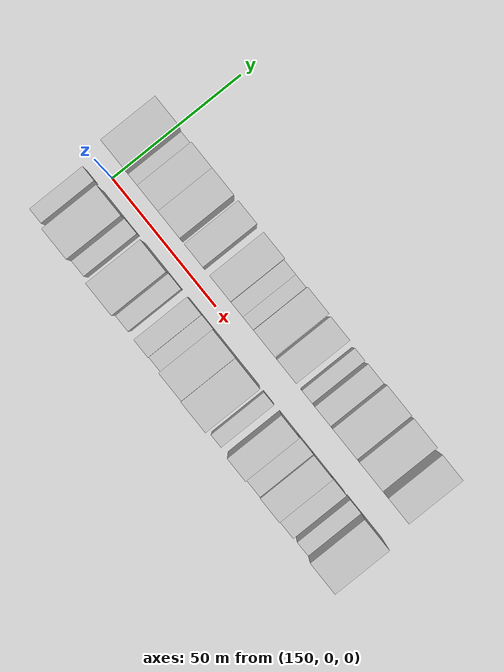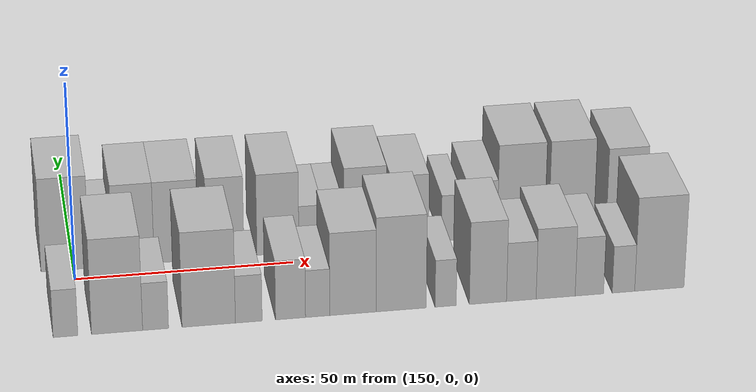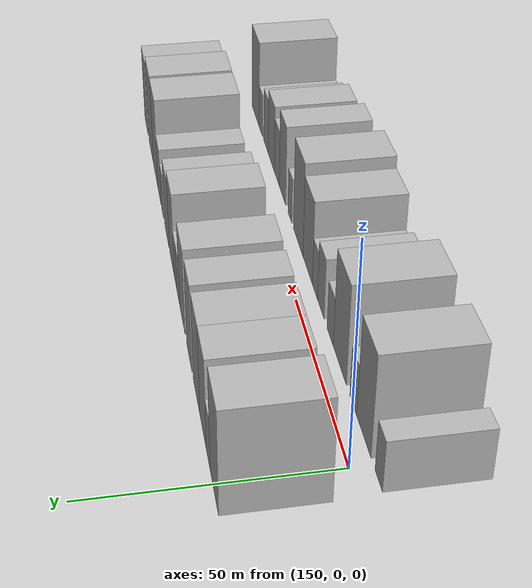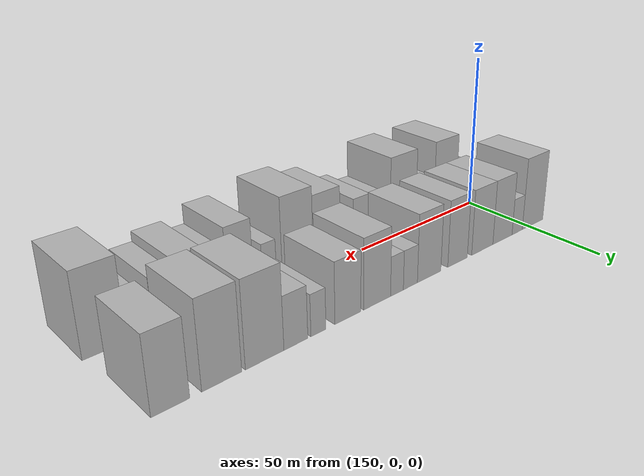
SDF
<sdf version="1.6">
 <world name="default">
  <model name="building_14">
   <static>1</static>
   <pose>148.1119 14.5000 0 0.000000 0.000000 1.570796</pose>
   <link name="link">
    <pose>0 0 12.00 0 0 0</pose>
    <collision name="collision"><geometry><box><size>20.0000 11.0243 24.0000</size></box></geometry></collision>
    <visual name="visual">
     <cast_shadows>0</cast_shadows>
     <geometry><box><size>20.0000 11.0243 24.0000</size></box></geometry>
     <material>
      <script>
       <uri>model://HANNAS_wall/materials/scripts</uri>
       <uri>model://HANNAS_wall/materials/textures</uri>
       <name>vrc/HANNAS_wall</name>
      </script>
     </material>
    </visual>
   </link>
  </model>
  <model name="building_15">
   <static>1</static>
   <pose>156.2772 14.5000 0 0.000000 0.000000 1.570796</pose>
   <link name="link">
    <pose>0 0 6.00 0 0 0</pose>
    <collision name="collision"><geometry><box><size>20.0000 5.3063 12.0000</size></box></geometry></collision>
    <visual name="visual">
     <cast_shadows>0</cast_shadows>
     <geometry><box><size>20.0000 5.3063 12.0000</size></box></geometry>
     <material>
      <script>
       <uri>model://HANNAS_wall/materials/scripts</uri>
       <uri>model://HANNAS_wall/materials/textures</uri>
       <name>vrc/HANNAS_wall</name>
      </script>
     </material>
    </visual>
   </link>
  </model>
  <model name="building_16">
   <static>1</static>
   <pose>163.7048 14.5000 0 0.000000 0.000000 1.570796</pose>
   <link name="link">
    <pose>0 0 10.50 0 0 0</pose>
    <collision name="collision"><geometry><box><size>20.0000 9.5489 21.0000</size></box></geometry></collision>
    <visual name="visual">
     <cast_shadows>0</cast_shadows>
     <geometry><box><size>20.0000 9.5489 21.0000</size></box></geometry>
     <material>
      <script>
       <uri>model://HANNAS_wall/materials/scripts</uri>
       <uri>model://HANNAS_wall/materials/textures</uri>
       <name>vrc/HANNAS_wall</name>
      </script>
     </material>
    </visual>
   </link>
  </model>
  <model name="building_17">
   <static>1</static>
   <pose>173.4987 14.5000 0 0.000000 0.000000 1.570796</pose>
   <link name="link">
    <pose>0 0 10.50 0 0 0</pose>
    <collision name="collision"><geometry><box><size>20.0000 10.0389 21.0000</size></box></geometry></collision>
    <visual name="visual">
     <cast_shadows>0</cast_shadows>
     <geometry><box><size>20.0000 10.0389 21.0000</size></box></geometry>
     <material>
      <script>
       <uri>model://HANNAS_wall/materials/scripts</uri>
       <uri>model://HANNAS_wall/materials/textures</uri>
       <name>vrc/HANNAS_wall</name>
      </script>
     </material>
    </visual>
   </link>
  </model>
  <model name="building_18">
   <static>1</static>
   <pose>184.8592 14.5000 0 0.000000 0.000000 1.570796</pose>
   <link name="link">
    <pose>0 0 10.50 0 0 0</pose>
    <collision name="collision"><geometry><box><size>20.0000 8.6819 21.0000</size></box></geometry></collision>
    <visual name="visual">
     <cast_shadows>0</cast_shadows>
     <geometry><box><size>20.0000 8.6819 21.0000</size></box></geometry>
     <material>
      <script>
       <uri>model://HANNAS_wall/materials/scripts</uri>
       <uri>model://HANNAS_wall/materials/textures</uri>
       <name>vrc/HANNAS_wall</name>
      </script>
     </material>
    </visual>
   </link>
  </model>
  <model name="building_19">
   <static>1</static>
   <pose>197.0673 14.5000 0 0.000000 0.000000 1.570796</pose>
   <link name="link">
    <pose>0 0 10.50 0 0 0</pose>
    <collision name="collision"><geometry><box><size>20.0000 9.7342 21.0000</size></box></geometry></collision>
    <visual name="visual">
     <cast_shadows>0</cast_shadows>
     <geometry><box><size>20.0000 9.7342 21.0000</size></box></geometry>
     <material>
      <script>
       <uri>model://HANNAS_wall/materials/scripts</uri>
       <uri>model://HANNAS_wall/materials/textures</uri>
       <name>vrc/HANNAS_wall</name>
      </script>
     </material>
    </visual>
   </link>
  </model>
  <model name="building_20">
   <static>1</static>
   <pose>204.7194 14.5000 0 0.000000 0.000000 1.570796</pose>
   <link name="link">
    <pose>0 0 6.00 0 0 0</pose>
    <collision name="collision"><geometry><box><size>20.0000 5.5701 12.0000</size></box></geometry></collision>
    <visual name="visual">
     <cast_shadows>0</cast_shadows>
     <geometry><box><size>20.0000 5.5701 12.0000</size></box></geometry>
     <material>
      <script>
       <uri>model://HANNAS_wall/materials/scripts</uri>
       <uri>model://HANNAS_wall/materials/textures</uri>
       <name>vrc/HANNAS_wall</name>
      </script>
     </material>
    </visual>
   </link>
  </model>
  <model name="building_21">
   <static>1</static>
   <pose>209.9682 14.5000 0 0.000000 0.000000 1.570796</pose>
   <link name="link">
    <pose>0 0 6.00 0 0 0</pose>
    <collision name="collision"><geometry><box><size>20.0000 4.9277 12.0000</size></box></geometry></collision>
    <visual name="visual">
     <cast_shadows>0</cast_shadows>
     <geometry><box><size>20.0000 4.9277 12.0000</size></box></geometry>
     <material>
      <script>
       <uri>model://HANNAS_wall/materials/scripts</uri>
       <uri>model://HANNAS_wall/materials/textures</uri>
       <name>vrc/HANNAS_wall</name>
      </script>
     </material>
    </visual>
   </link>
  </model>
  <model name="building_22">
   <static>1</static>
   <pose>217.3739 14.5000 0 0.000000 0.000000 1.570796</pose>
   <link name="link">
    <pose>0 0 10.50 0 0 0</pose>
    <collision name="collision"><geometry><box><size>20.0000 9.8837 21.0000</size></box></geometry></collision>
    <visual name="visual">
     <cast_shadows>0</cast_shadows>
     <geometry><box><size>20.0000 9.8837 21.0000</size></box></geometry>
     <material>
      <script>
       <uri>model://HANNAS_wall/materials/scripts</uri>
       <uri>model://HANNAS_wall/materials/textures</uri>
       <name>vrc/HANNAS_wall</name>
      </script>
     </material>
    </visual>
   </link>
  </model>
  <model name="building_23">
   <static>1</static>
   <pose>227.8025 14.5000 0 0.000000 0.000000 1.570796</pose>
   <link name="link">
    <pose>0 0 9.00 0 0 0</pose>
    <collision name="collision"><geometry><box><size>20.0000 8.9735 18.0000</size></box></geometry></collision>
    <visual name="visual">
     <cast_shadows>0</cast_shadows>
     <geometry><box><size>20.0000 8.9735 18.0000</size></box></geometry>
     <material>
      <script>
       <uri>model://HANNAS_wall/materials/scripts</uri>
       <uri>model://HANNAS_wall/materials/textures</uri>
       <name>vrc/HANNAS_wall</name>
      </script>
     </material>
    </visual>
   </link>
  </model>
  <model name="building_24">
   <static>1</static>
   <pose>237.7132 14.5000 0 0.000000 0.000000 1.570796</pose>
   <link name="link">
    <pose>0 0 6.00 0 0 0</pose>
    <collision name="collision"><geometry><box><size>20.0000 4.8478 12.0000</size></box></geometry></collision>
    <visual name="visual">
     <cast_shadows>0</cast_shadows>
     <geometry><box><size>20.0000 4.8478 12.0000</size></box></geometry>
     <material>
      <script>
       <uri>model://HANNAS_wall/materials/scripts</uri>
       <uri>model://HANNAS_wall/materials/textures</uri>
       <name>vrc/HANNAS_wall</name>
      </script>
     </material>
    </visual>
   </link>
  </model>
  <model name="building_25">
   <static>1</static>
   <pose>244.8207 14.5000 0 0.000000 0.000000 1.570796</pose>
   <link name="link">
    <pose>0 0 7.50 0 0 0</pose>
    <collision name="collision"><geometry><box><size>20.0000 7.3672 15.0000</size></box></geometry></collision>
    <visual name="visual">
     <cast_shadows>0</cast_shadows>
     <geometry><box><size>20.0000 7.3672 15.0000</size></box></geometry>
     <material>
      <script>
       <uri>model://HANNAS_wall/materials/scripts</uri>
       <uri>model://HANNAS_wall/materials/textures</uri>
       <name>vrc/HANNAS_wall</name>
      </script>
     </material>
    </visual>
   </link>
  </model>
  <model name="building_26">
   <static>1</static>
   <pose>254.1062 14.5000 0 0.000000 0.000000 1.570796</pose>
   <link name="link">
    <pose>0 0 12.00 0 0 0</pose>
    <collision name="collision"><geometry><box><size>20.0000 11.2037 24.0000</size></box></geometry></collision>
    <visual name="visual">
     <cast_shadows>0</cast_shadows>
     <geometry><box><size>20.0000 11.2037 24.0000</size></box></geometry>
     <material>
      <script>
       <uri>model://HANNAS_wall/materials/scripts</uri>
       <uri>model://HANNAS_wall/materials/textures</uri>
       <name>vrc/HANNAS_wall</name>
      </script>
     </material>
    </visual>
   </link>
  </model>
  <model name="building_27">
   <static>1</static>
   <pose>266.0632 14.5000 0 0.000000 0.000000 1.570796</pose>
   <link name="link">
    <pose>0 0 12.00 0 0 0</pose>
    <collision name="collision"><geometry><box><size>20.0000 10.7104 24.0000</size></box></geometry></collision>
    <visual name="visual">
     <cast_shadows>0</cast_shadows>
     <geometry><box><size>20.0000 10.7104 24.0000</size></box></geometry>
     <material>
      <script>
       <uri>model://HANNAS_wall/materials/scripts</uri>
       <uri>model://HANNAS_wall/materials/textures</uri>
       <name>vrc/HANNAS_wall</name>
      </script>
     </material>
    </visual>
   </link>
  </model>
  <model name="building_28">
   <static>1</static>
   <pose>279.1710 14.5000 0 0.000000 0.000000 1.570796</pose>
   <link name="link">
    <pose>0 0 10.50 0 0 0</pose>
    <collision name="collision"><geometry><box><size>20.0000 9.5052 21.0000</size></box></geometry></collision>
    <visual name="visual">
     <cast_shadows>0</cast_shadows>
     <geometry><box><size>20.0000 9.5052 21.0000</size></box></geometry>
     <material>
      <script>
       <uri>model://HANNAS_wall/materials/scripts</uri>
       <uri>model://HANNAS_wall/materials/textures</uri>
       <name>vrc/HANNAS_wall</name>
      </script>
     </material>
    </visual>
   </link>
  </model>
  <model name="building_45">
   <static>1</static>
   <pose>146.1252 -14.5000 0 0.000000 0.000000 1.570796</pose>
   <link name="link">
    <pose>0 0 6.00 0 0 0</pose>
    <collision name="collision"><geometry><box><size>20.0000 5.4544 12.0000</size></box></geometry></collision>
    <visual name="visual">
     <cast_shadows>0</cast_shadows>
     <geometry><box><size>20.0000 5.4544 12.0000</size></box></geometry>
     <material>
      <script>
       <uri>model://HANNAS_wall/materials/scripts</uri>
       <uri>model://HANNAS_wall/materials/textures</uri>
       <name>vrc/HANNAS_wall</name>
      </script>
     </material>
    </visual>
   </link>
  </model>
  <model name="building_46">
   <static>1</static>
   <pose>157.4944 -14.5000 0 0.000000 0.000000 1.570796</pose>
   <link name="link">
    <pose>0 0 12.00 0 0 0</pose>
    <collision name="collision"><geometry><box><size>20.0000 11.2840 24.0000</size></box></geometry></collision>
    <visual name="visual">
     <cast_shadows>0</cast_shadows>
     <geometry><box><size>20.0000 11.2840 24.0000</size></box></geometry>
     <material>
      <script>
       <uri>model://HANNAS_wall/materials/scripts</uri>
       <uri>model://HANNAS_wall/materials/textures</uri>
       <name>vrc/HANNAS_wall</name>
      </script>
     </material>
    </visual>
   </link>
  </model>
  <model name="building_47">
   <static>1</static>
   <pose>166.0079 -14.5000 0 0.000000 0.000000 1.570796</pose>
   <link name="link">
    <pose>0 0 6.00 0 0 0</pose>
    <collision name="collision"><geometry><box><size>20.0000 5.7429 12.0000</size></box></geometry></collision>
    <visual name="visual">
     <cast_shadows>0</cast_shadows>
     <geometry><box><size>20.0000 5.7429 12.0000</size></box></geometry>
     <material>
      <script>
       <uri>model://HANNAS_wall/materials/scripts</uri>
       <uri>model://HANNAS_wall/materials/textures</uri>
       <name>vrc/HANNAS_wall</name>
      </script>
     </material>
    </visual>
   </link>
  </model>
  <model name="building_48">
   <static>1</static>
   <pose>177.8174 -14.5000 0 0.000000 0.000000 1.570796</pose>
   <link name="link">
    <pose>0 0 12.00 0 0 0</pose>
    <collision name="collision"><geometry><box><size>20.0000 11.8762 24.0000</size></box></geometry></collision>
    <visual name="visual">
     <cast_shadows>0</cast_shadows>
     <geometry><box><size>20.0000 11.8762 24.0000</size></box></geometry>
     <material>
      <script>
       <uri>model://HANNAS_wall/materials/scripts</uri>
       <uri>model://HANNAS_wall/materials/textures</uri>
       <name>vrc/HANNAS_wall</name>
      </script>
     </material>
    </visual>
   </link>
  </model>
  <model name="building_49">
   <static>1</static>
   <pose>186.7386 -14.5000 0 0.000000 0.000000 1.570796</pose>
   <link name="link">
    <pose>0 0 6.00 0 0 0</pose>
    <collision name="collision"><geometry><box><size>20.0000 5.9663 12.0000</size></box></geometry></collision>
    <visual name="visual">
     <cast_shadows>0</cast_shadows>
     <geometry><box><size>20.0000 5.9663 12.0000</size></box></geometry>
     <material>
      <script>
       <uri>model://HANNAS_wall/materials/scripts</uri>
       <uri>model://HANNAS_wall/materials/textures</uri>
       <name>vrc/HANNAS_wall</name>
      </script>
     </material>
    </visual>
   </link>
  </model>
  <model name="building_50">
   <static>1</static>
   <pose>196.0771 -14.5000 0 0.000000 0.000000 1.570796</pose>
   <link name="link">
    <pose>0 0 7.50 0 0 0</pose>
    <collision name="collision"><geometry><box><size>20.0000 6.7107 15.0000</size></box></geometry></collision>
    <visual name="visual">
     <cast_shadows>0</cast_shadows>
     <geometry><box><size>20.0000 6.7107 15.0000</size></box></geometry>
     <material>
      <script>
       <uri>model://HANNAS_wall/materials/scripts</uri>
       <uri>model://HANNAS_wall/materials/textures</uri>
       <name>vrc/HANNAS_wall</name>
      </script>
     </material>
    </visual>
   </link>
  </model>
  <model name="building_51">
   <static>1</static>
   <pose>202.1511 -14.5000 0 0.000000 0.000000 1.570796</pose>
   <link name="link">
    <pose>0 0 6.00 0 0 0</pose>
    <collision name="collision"><geometry><box><size>20.0000 5.4374 12.0000</size></box></geometry></collision>
    <visual name="visual">
     <cast_shadows>0</cast_shadows>
     <geometry><box><size>20.0000 5.4374 12.0000</size></box></geometry>
     <material>
      <script>
       <uri>model://HANNAS_wall/materials/scripts</uri>
       <uri>model://HANNAS_wall/materials/textures</uri>
       <name>vrc/HANNAS_wall</name>
      </script>
     </material>
    </visual>
   </link>
  </model>
  <model name="building_52">
   <static>1</static>
   <pose>210.0968 -14.5000 0 0.000000 0.000000 1.570796</pose>
   <link name="link">
    <pose>0 0 10.50 0 0 0</pose>
    <collision name="collision"><geometry><box><size>20.0000 10.4538 21.0000</size></box></geometry></collision>
    <visual name="visual">
     <cast_shadows>0</cast_shadows>
     <geometry><box><size>20.0000 10.4538 21.0000</size></box></geometry>
     <material>
      <script>
       <uri>model://HANNAS_wall/materials/scripts</uri>
       <uri>model://HANNAS_wall/materials/textures</uri>
       <name>vrc/HANNAS_wall</name>
      </script>
     </material>
    </visual>
   </link>
  </model>
  <model name="building_53">
   <static>1</static>
   <pose>220.9941 -14.5000 0 0.000000 0.000000 1.570796</pose>
   <link name="link">
    <pose>0 0 12.00 0 0 0</pose>
    <collision name="collision"><geometry><box><size>20.0000 11.3409 24.0000</size></box></geometry></collision>
    <visual name="visual">
     <cast_shadows>0</cast_shadows>
     <geometry><box><size>20.0000 11.3409 24.0000</size></box></geometry>
     <material>
      <script>
       <uri>model://HANNAS_wall/materials/scripts</uri>
       <uri>model://HANNAS_wall/materials/textures</uri>
       <name>vrc/HANNAS_wall</name>
      </script>
     </material>
    </visual>
   </link>
  </model>
  <model name="building_54">
   <static>1</static>
   <pose>231.0728 -14.5000 0 0.000000 0.000000 1.570796</pose>
   <link name="link">
    <pose>0 0 6.00 0 0 0</pose>
    <collision name="collision"><geometry><box><size>20.0000 4.8164 12.0000</size></box></geometry></collision>
    <visual name="visual">
     <cast_shadows>0</cast_shadows>
     <geometry><box><size>20.0000 4.8164 12.0000</size></box></geometry>
     <material>
      <script>
       <uri>model://HANNAS_wall/materials/scripts</uri>
       <uri>model://HANNAS_wall/materials/textures</uri>
       <name>vrc/HANNAS_wall</name>
      </script>
     </material>
    </visual>
   </link>
  </model>
  <model name="building_55">
   <static>1</static>
   <pose>240.7075 -14.5000 0 0.000000 0.000000 1.570796</pose>
   <link name="link">
    <pose>0 0 10.50 0 0 0</pose>
    <collision name="collision"><geometry><box><size>20.0000 8.4530 21.0000</size></box></geometry></collision>
    <visual name="visual">
     <cast_shadows>0</cast_shadows>
     <geometry><box><size>20.0000 8.4530 21.0000</size></box></geometry>
     <material>
      <script>
       <uri>model://HANNAS_wall/materials/scripts</uri>
       <uri>model://HANNAS_wall/materials/textures</uri>
       <name>vrc/HANNAS_wall</name>
      </script>
     </material>
    </visual>
   </link>
  </model>
  <model name="building_56">
   <static>1</static>
   <pose>248.3258 -14.5000 0 0.000000 0.000000 1.570796</pose>
   <link name="link">
    <pose>0 0 7.50 0 0 0</pose>
    <collision name="collision"><geometry><box><size>20.0000 6.7836 15.0000</size></box></geometry></collision>
    <visual name="visual">
     <cast_shadows>0</cast_shadows>
     <geometry><box><size>20.0000 6.7836 15.0000</size></box></geometry>
     <material>
      <script>
       <uri>model://HANNAS_wall/materials/scripts</uri>
       <uri>model://HANNAS_wall/materials/textures</uri>
       <name>vrc/HANNAS_wall</name>
      </script>
     </material>
    </visual>
   </link>
  </model>
  <model name="building_57">
   <static>1</static>
   <pose>256.1953 -14.5000 0 0.000000 0.000000 1.570796</pose>
   <link name="link">
    <pose>0 0 9.00 0 0 0</pose>
    <collision name="collision"><geometry><box><size>20.0000 8.9555 18.0000</size></box></geometry></collision>
    <visual name="visual">
     <cast_shadows>0</cast_shadows>
     <geometry><box><size>20.0000 8.9555 18.0000</size></box></geometry>
     <material>
      <script>
       <uri>model://HANNAS_wall/materials/scripts</uri>
       <uri>model://HANNAS_wall/materials/textures</uri>
       <name>vrc/HANNAS_wall</name>
      </script>
     </material>
    </visual>
   </link>
  </model>
  <model name="building_58">
   <static>1</static>
   <pose>263.9451 -14.5000 0 0.000000 0.000000 1.570796</pose>
   <link name="link">
    <pose>0 0 7.50 0 0 0</pose>
    <collision name="collision"><geometry><box><size>20.0000 6.5441 15.0000</size></box></geometry></collision>
    <visual name="visual">
     <cast_shadows>0</cast_shadows>
     <geometry><box><size>20.0000 6.5441 15.0000</size></box></geometry>
     <material>
      <script>
       <uri>model://HANNAS_wall/materials/scripts</uri>
       <uri>model://HANNAS_wall/materials/textures</uri>
       <name>vrc/HANNAS_wall</name>
      </script>
     </material>
    </visual>
   </link>
  </model>
  <model name="building_59">
   <static>1</static>
   <pose>271.8021 -14.5000 0 0.000000 0.000000 1.570796</pose>
   <link name="link">
    <pose>0 0 6.00 0 0 0</pose>
    <collision name="collision"><geometry><box><size>20.0000 5.1699 12.0000</size></box></geometry></collision>
    <visual name="visual">
     <cast_shadows>0</cast_shadows>
     <geometry><box><size>20.0000 5.1699 12.0000</size></box></geometry>
     <material>
      <script>
       <uri>model://HANNAS_wall/materials/scripts</uri>
       <uri>model://HANNAS_wall/materials/textures</uri>
       <name>vrc/HANNAS_wall</name>
      </script>
     </material>
    </visual>
   </link>
  </model>
  <model name="building_60">
   <static>1</static>
   <pose>280.0920 -14.5000 0 0.000000 0.000000 1.570796</pose>
   <link name="link">
    <pose>0 0 12.00 0 0 0</pose>
    <collision name="collision"><geometry><box><size>20.0000 11.4100 24.0000</size></box></geometry></collision>
    <visual name="visual">
     <cast_shadows>0</cast_shadows>
     <geometry><box><size>20.0000 11.4100 24.0000</size></box></geometry>
     <material>
      <script>
       <uri>model://HANNAS_wall/materials/scripts</uri>
       <uri>model://HANNAS_wall/materials/textures</uri>
       <name>vrc/HANNAS_wall</name>
      </script>
     </material>
    </visual>
   </link>
  </model>
 </world>
</sdf>
